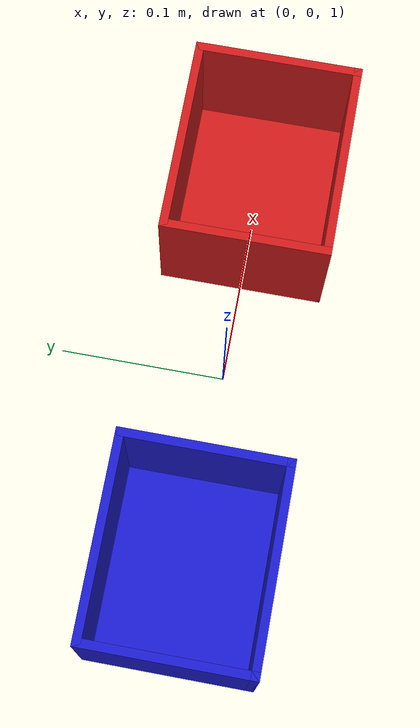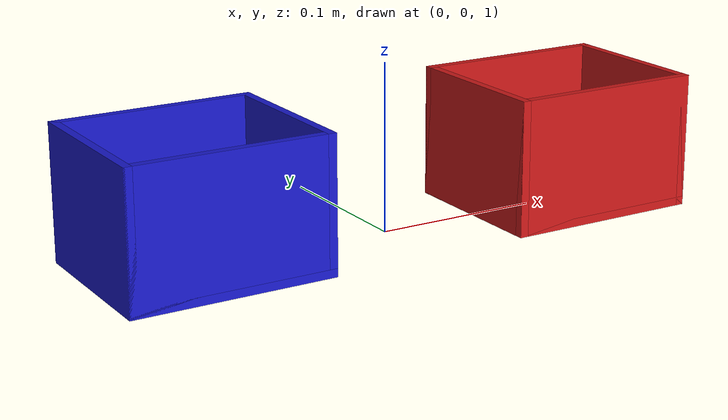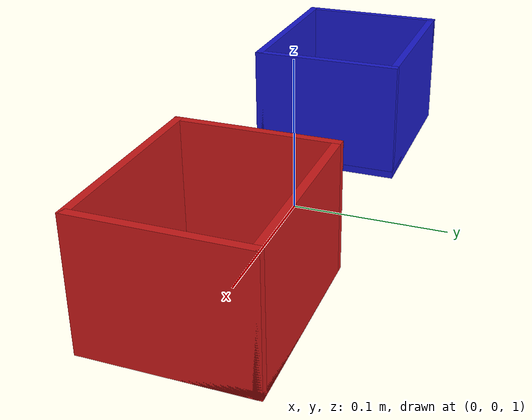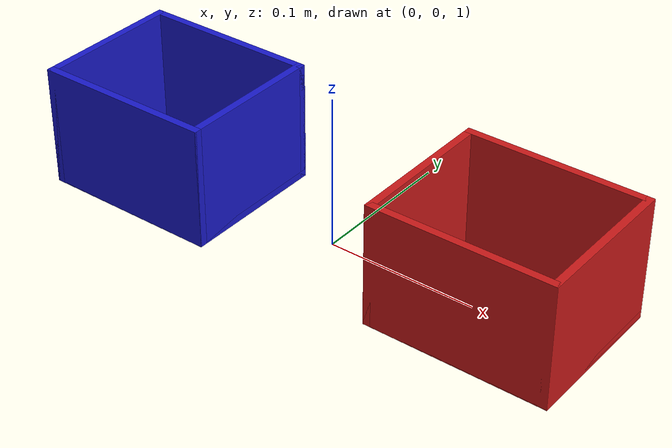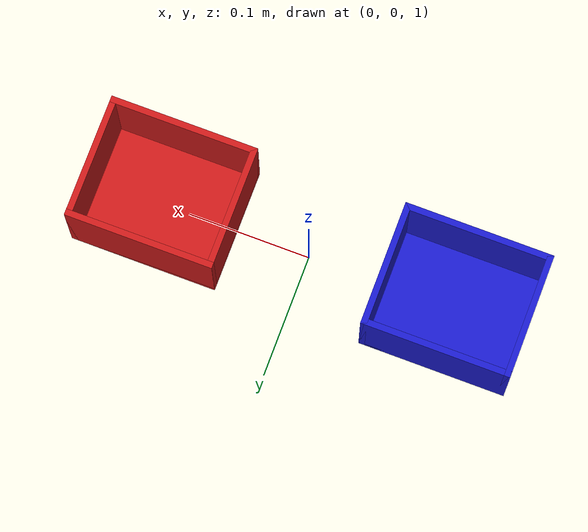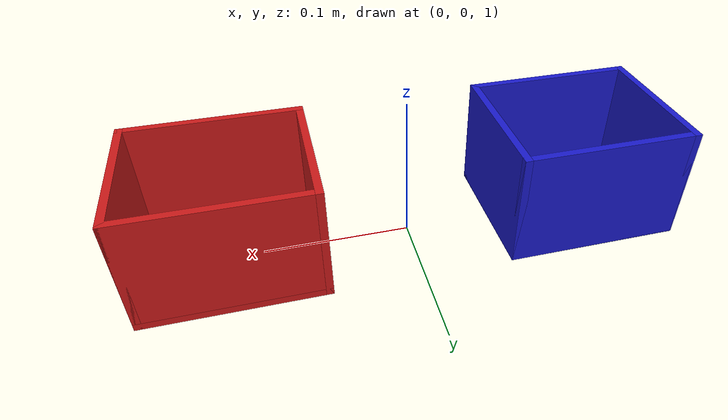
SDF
<sdf version="1.8">
 <world name="world_robotic_arm">
  <physics name="1ms" type="ignored">
   <max_step_size>0.001</max_step_size>
   <real_time_factor>1.0</real_time_factor>
  </physics>
  <plugin filename="gz-sim-physics-system" name="gz::sim::systems::Physics"/>
  <plugin filename="gz-sim-sensors-system" name="gz::sim::systems::Sensors">
   <render_engine>ogre2</render_engine>
  </plugin>
  <plugin filename="gz-sim-user-commands-system" name="gz::sim::systems::UserCommands"/>
  <plugin filename="gz-sim-scene-broadcaster-system" name="gz::sim::systems::SceneBroadcaster"/>
  <include><uri>model://Sun</uri></include>
  <include><uri>model://Ground_Plane</uri></include>
  <model name="red_bin">
   <static>true</static>
   <pose>0.12 0.0 1.0 0 0 0</pose>
   <link name="bin_link">
    <collision name="floor_col">
     <pose>0 0 0.0025 0 0 0</pose>
     <geometry><box><size>0.12 0.10 0.005</size></box></geometry>
    </collision>
    <visual name="floor_vis">
     <pose>0 0 0.0025 0 0 0</pose>
     <geometry><box><size>0.12 0.10 0.005</size></box></geometry>
     <material>
      <ambient>0.8 0.1 0.1 1</ambient>
      <diffuse>0.8 0.1 0.1 1</diffuse>
      <specular>0.2 0.1 0.1 1</specular>
     </material>
    </visual>
    <collision name="front_col">
     <pose>0.0575 0 0.04 0 0 0</pose>
     <geometry><box><size>0.005 0.10 0.08</size></box></geometry>
    </collision>
    <visual name="front_vis">
     <pose>0.0575 0 0.04 0 0 0</pose>
     <geometry><box><size>0.005 0.10 0.08</size></box></geometry>
     <material>
      <ambient>0.8 0.1 0.1 1</ambient>
      <diffuse>0.8 0.1 0.1 1</diffuse>
      <specular>0.2 0.1 0.1 1</specular>
     </material>
    </visual>
    <collision name="back_col">
     <pose>-0.0575 0 0.04 0 0 0</pose>
     <geometry><box><size>0.005 0.10 0.08</size></box></geometry>
    </collision>
    <visual name="back_vis">
     <pose>-0.0575 0 0.04 0 0 0</pose>
     <geometry><box><size>0.005 0.10 0.08</size></box></geometry>
     <material>
      <ambient>0.8 0.1 0.1 1</ambient>
      <diffuse>0.8 0.1 0.1 1</diffuse>
      <specular>0.2 0.1 0.1 1</specular>
     </material>
    </visual>
    <collision name="right_col">
     <pose>0 0.0475 0.04 0 0 0</pose>
     <geometry><box><size>0.12 0.005 0.08</size></box></geometry>
    </collision>
    <visual name="right_vis">
     <pose>0 0.0475 0.04 0 0 0</pose>
     <geometry><box><size>0.12 0.005 0.08</size></box></geometry>
     <material>
      <ambient>0.8 0.1 0.1 1</ambient>
      <diffuse>0.8 0.1 0.1 1</diffuse>
      <specular>0.2 0.1 0.1 1</specular>
     </material>
    </visual>
    <collision name="left_col">
     <pose>0 -0.0475 0.04 0 0 0</pose>
     <geometry><box><size>0.12 0.005 0.08</size></box></geometry>
    </collision>
    <visual name="left_vis">
     <pose>0 -0.0475 0.04 0 0 0</pose>
     <geometry><box><size>0.12 0.005 0.08</size></box></geometry>
     <material>
      <ambient>0.8 0.1 0.1 1</ambient>
      <diffuse>0.8 0.1 0.1 1</diffuse>
      <specular>0.2 0.1 0.1 1</specular>
     </material>
    </visual>
   </link>
  </model>
  <model name="blue_bin">
   <static>true</static>
   <pose>-0.12 0.0 1.0 0 0 0</pose>
   <link name="bin_link">
    <collision name="floor_col">
     <pose>0 0 0.0025 0 0 0</pose>
     <geometry><box><size>0.12 0.10 0.005</size></box></geometry>
    </collision>
    <visual name="floor_vis">
     <pose>0 0 0.0025 0 0 0</pose>
     <geometry><box><size>0.12 0.10 0.005</size></box></geometry>
     <material>
      <ambient>0.1 0.1 0.8 1</ambient>
      <diffuse>0.1 0.1 0.8 1</diffuse>
      <specular>0.1 0.1 0.2 1</specular>
     </material>
    </visual>
    <collision name="front_col">
     <pose>0.0575 0 0.04 0 0 0</pose>
     <geometry><box><size>0.005 0.10 0.08</size></box></geometry>
    </collision>
    <visual name="front_vis">
     <pose>0.0575 0 0.04 0 0 0</pose>
     <geometry><box><size>0.005 0.10 0.08</size></box></geometry>
     <material>
      <ambient>0.1 0.1 0.8 1</ambient>
      <diffuse>0.1 0.1 0.8 1</diffuse>
      <specular>0.1 0.1 0.2 1</specular>
     </material>
    </visual>
    <collision name="back_col">
     <pose>-0.0575 0 0.04 0 0 0</pose>
     <geometry><box><size>0.005 0.10 0.08</size></box></geometry>
    </collision>
    <visual name="back_vis">
     <pose>-0.0575 0 0.04 0 0 0</pose>
     <geometry><box><size>0.005 0.10 0.08</size></box></geometry>
     <material>
      <ambient>0.1 0.1 0.8 1</ambient>
      <diffuse>0.1 0.1 0.8 1</diffuse>
      <specular>0.1 0.1 0.2 1</specular>
     </material>
    </visual>
    <collision name="right_col">
     <pose>0 0.0475 0.04 0 0 0</pose>
     <geometry><box><size>0.12 0.005 0.08</size></box></geometry>
    </collision>
    <visual name="right_vis">
     <pose>0 0.0475 0.04 0 0 0</pose>
     <geometry><box><size>0.12 0.005 0.08</size></box></geometry>
     <material>
      <ambient>0.1 0.1 0.8 1</ambient>
      <diffuse>0.1 0.1 0.8 1</diffuse>
      <specular>0.1 0.1 0.2 1</specular>
     </material>
    </visual>
    <collision name="left_col">
     <pose>0 -0.0475 0.04 0 0 0</pose>
     <geometry><box><size>0.12 0.005 0.08</size></box></geometry>
    </collision>
    <visual name="left_vis">
     <pose>0 -0.0475 0.04 0 0 0</pose>
     <geometry><box><size>0.12 0.005 0.08</size></box></geometry>
     <material>
      <ambient>0.1 0.1 0.8 1</ambient>
      <diffuse>0.1 0.1 0.8 1</diffuse>
      <specular>0.1 0.1 0.2 1</specular>
     </material>
    </visual>
   </link>
  </model>
 </world>
</sdf>
